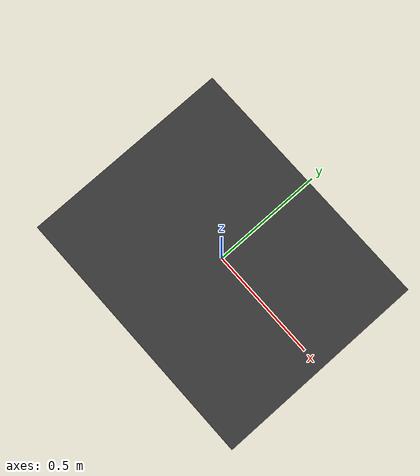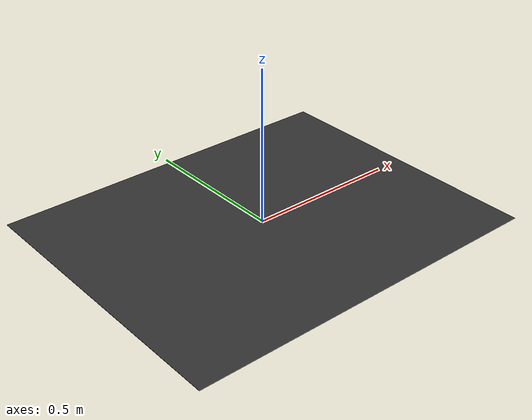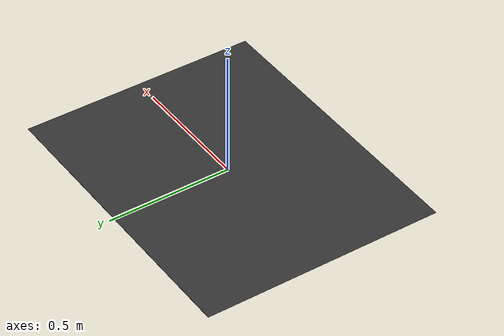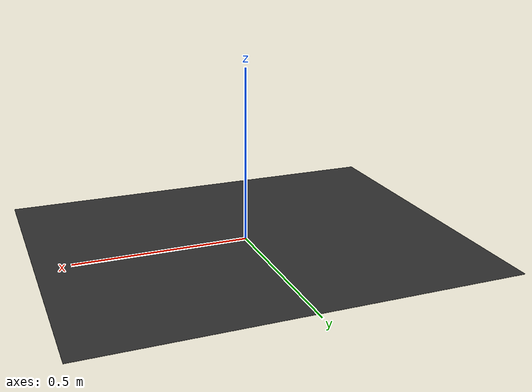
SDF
<?xml version="1.0" ?>
<sdf version="1.5">
    <model name="land_plane">
        <static>true</static>
        <link name="link">
            <collision name="collision">
              <geometry>
                <box>
                  <size>1.2 0.96 0.1</size>
                </box>
              </geometry>
              <!-- Add friction to the model -->
              <surface>
                <friction>
                  <ode>
                    <mu>1.0</mu>
                    <mu2>1.0</mu2>
                    <fdir1>1 1 0</fdir1>
                    <slip1>0</slip1>
                    <slip2>0</slip2>
                  </ode>
                </friction>
              </surface>
            </collision>
            <visual name="visual">
                <cast_shadows>false</cast_shadows>
                <geometry>
                    <plane>
                        <normal>0 0 1</normal>
                        <size>1.2 0.96</size>
                    </plane>
                </geometry>
                <material>
                    <ambient>0.1 0.1 0.1 1</ambient>
                    <diffuse>0.2 0.2 0.2 1</diffuse>
                    <specular>0.01 0.01 0.01 1</specular>
                </material>
            </visual>
        </link>
        <plugin filename="ignition-gazebo-pose-publisher-system"
          name="ignition::gazebo::systems::PosePublisher">
          <publish_link_pose>false</publish_link_pose>
          <publish_collision_pose>false</publish_collision_pose>
          <publish_visual_pose>false</publish_visual_pose>
          <publish_nested_model_pose>true</publish_nested_model_pose>
          <publish_model_pose>true</publish_model_pose>
          <use_pose_vector_msg>true</use_pose_vector_msg>
          <static_publisher>false</static_publisher>
          <update_frequency>100</update_frequency>
        </plugin>
    </model>
</sdf>
